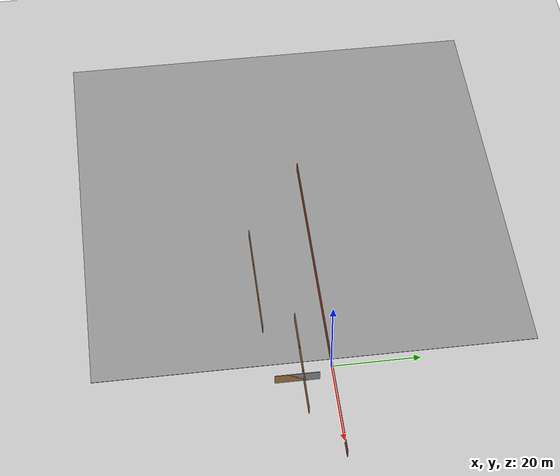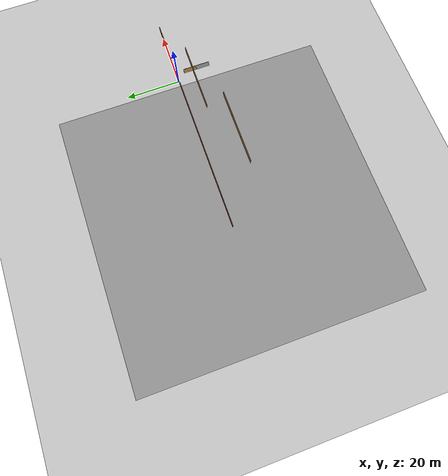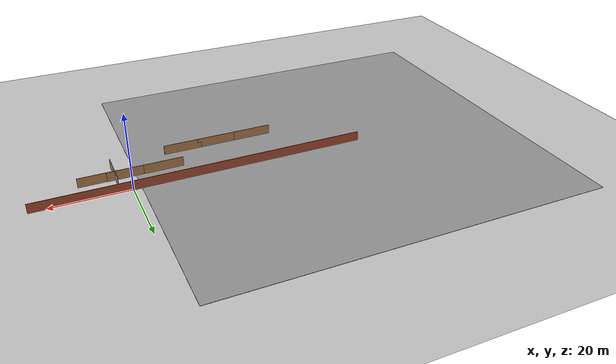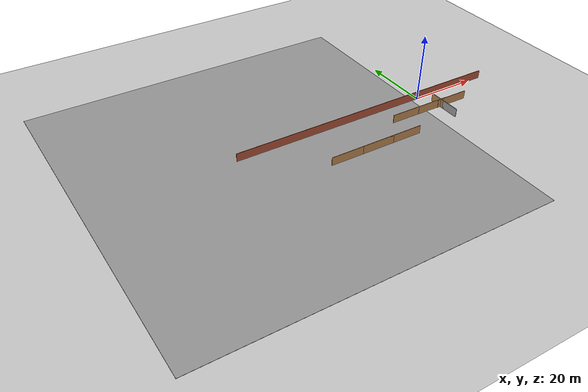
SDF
<sdf version="1.5">
 <world name="default">
  <model name="ground_plane">
   <static>1</static>
   <link name="link">
    <collision name="collision">
     <geometry><plane><normal>0 0 1</normal><size>100 100</size></plane></geometry>
     <surface><friction><ode><mu>100</mu><mu2>50</mu2></ode></friction></surface>
    </collision>
    <visual name="visual">
     <cast_shadows>0</cast_shadows>
     <geometry><plane><normal>0 0 1</normal><size>100 100</size></plane></geometry>
     <material>
      <script><uri>file://media/materials/scripts/gazebo.material</uri><name>Gazebo/Grey</name></script>
     </material>
    </visual>
   </link>
  </model>
  <model name="ground_plane_5">
   <static>1</static>
   <link name="link">
    <collision name="collision">
     <geometry><plane><normal>0 0 1</normal><size>100 100</size></plane></geometry>
     <surface><friction><ode><mu>100</mu><mu2>50</mu2></ode></friction></surface>
    </collision>
    <visual name="visual">
     <cast_shadows>0</cast_shadows>
     <geometry><plane><normal>0 0 1</normal><size>100 100</size></plane></geometry>
     <material>
      <script><uri>file://media/materials/scripts/gazebo.material</uri><name>Gazebo/Grey</name></script>
     </material>
    </visual>
   </link>
   <pose>-52 -3 0 0 -0 0</pose>
  </model>
  <model name="map_final_21">
   <pose>-18 0 0 0 -0 0</pose>
   <link name="Wall_7">
    <collision name="Wall_7_Collision">
     <geometry><box><size>84.15 0.15 2.5</size></box></geometry>
     <pose>0 0 1.25 0 -0 0</pose>
    </collision>
    <visual name="Wall_7_Visual">
     <pose>0 0 1.25 0 -0 0</pose>
     <geometry><box><size>84.15 0.15 2.5</size></box></geometry>
     <material>
      <script><uri>file://media/materials/scripts/gazebo.material</uri><name>Gazebo/Bricks</name></script>
      <ambient>1 1 1 1</ambient>
     </material>
    </visual>
    <pose>0 0 0 0 -0 3.14159</pose>
   </link>
   <static>1</static>
  </model>
  <model name="wall-10m-ofoghi_0">
   <pose>7 -6.59851 0 0 -0 0</pose>
   <link name="Wall_22">
    <collision name="Wall_22_Collision">
     <geometry><box><size>10 0.15 2.5</size></box></geometry>
     <pose>0 0 1.25 0 -0 0</pose>
    </collision>
    <visual name="Wall_22_Visual">
     <pose>0 0 1.25 0 -0 0</pose>
     <geometry><box><size>10 0.15 2.5</size></box></geometry>
     <material>
      <script><uri>file://media/materials/scripts/gazebo.material</uri><name>Gazebo/Wood</name></script>
      <ambient>1 1 1 1</ambient>
     </material>
    </visual>
   </link>
   <static>1</static>
  </model>
  <model name="wall-10m-ofoghi_1">
   <pose>0 -6.50132 0 0 -0 0</pose>
   <link name="Wall_22">
    <collision name="Wall_22_Collision">
     <geometry><box><size>10 0.15 2.5</size></box></geometry>
     <pose>0 0 1.25 0 -0 0</pose>
    </collision>
    <visual name="Wall_22_Visual">
     <pose>0 0 1.25 0 -0 0</pose>
     <geometry><box><size>10 0.15 2.5</size></box></geometry>
     <material>
      <script><uri>file://media/materials/scripts/gazebo.material</uri><name>Gazebo/Wood</name></script>
      <ambient>1 1 1 1</ambient>
     </material>
    </visual>
   </link>
   <static>1</static>
  </model>
  <model name="wall-10m-ofoghi_2">
   <pose>-9 -6.47267 0 0 -0 0</pose>
   <link name="Wall_22">
    <collision name="Wall_22_Collision">
     <geometry><box><size>10 0.15 2.5</size></box></geometry>
     <pose>0 0 1.25 0 -0 0</pose>
    </collision>
    <visual name="Wall_22_Visual">
     <pose>0 0 1.25 0 -0 0</pose>
     <geometry><box><size>10 0.15 2.5</size></box></geometry>
     <material>
      <script><uri>file://media/materials/scripts/gazebo.material</uri><name>Gazebo/Wood</name></script>
      <ambient>1 1 1 1</ambient>
     </material>
    </visual>
   </link>
   <static>1</static>
  </model>
  <model name="wall-10m-amodi">
   <pose>3 -8 0 0 -0 0</pose>
   <link name="Wall_24">
    <collision name="Wall_24_Collision">
     <geometry><box><size>10 0.15 2.5</size></box></geometry>
     <pose>0 0 1.25 0 -0 0</pose>
    </collision>
    <visual name="Wall_24_Visual">
     <pose>0 0 1.25 0 -0 0</pose>
     <geometry><box><size>10 0.15 2.5</size></box></geometry>
     <material>
      <script><uri>file://media/materials/scripts/gazebo.material</uri><name>Gazebo/Grey</name></script>
      <ambient>1 1 1 1</ambient>
     </material>
    </visual>
    <pose>0 -0 0 0 0 -1.5708</pose>
   </link>
   <link name="Wall_25">
    <collision name="Wall_25_Collision">
     <geometry><box><size>10 0.15 2.5</size></box></geometry>
     <pose>0 0 1.25 0 -0 0</pose>
    </collision>
    <visual name="Wall_25_Visual">
     <pose>0 0 1.25 0 -0 0</pose>
     <geometry><box><size>10 0.15 2.5</size></box></geometry>
     <material>
      <script><uri>file://media/materials/scripts/gazebo.material</uri><name>Gazebo/Wood</name></script>
      <ambient>1 1 1 1</ambient>
     </material>
    </visual>
    <pose>0 -0 0 0 -0 1.5708</pose>
   </link>
   <static>1</static>
  </model>
  <model name="wall-10m-ofoghi_3">
   <pose>-25 -14 0 0 -0 0</pose>
   <link name="Wall_22">
    <collision name="Wall_22_Collision">
     <geometry><box><size>10 0.15 2.5</size></box></geometry>
     <pose>0 0 1.25 0 -0 0</pose>
    </collision>
    <visual name="Wall_22_Visual">
     <pose>0 0 1.25 0 -0 0</pose>
     <geometry><box><size>10 0.15 2.5</size></box></geometry>
     <material>
      <script><uri>file://media/materials/scripts/gazebo.material</uri><name>Gazebo/Wood</name></script>
      <ambient>1 1 1 1</ambient>
     </material>
    </visual>
   </link>
   <static>1</static>
  </model>
  <model name="wall-10m-ofoghi_4">
   <pose>-16 -14 0 0 -0 0</pose>
   <link name="Wall_22">
    <collision name="Wall_22_Collision">
     <geometry><box><size>10 0.15 2.5</size></box></geometry>
     <pose>0 0 1.25 0 -0 0</pose>
    </collision>
    <visual name="Wall_22_Visual">
     <pose>0 0 1.25 0 -0 0</pose>
     <geometry><box><size>10 0.15 2.5</size></box></geometry>
     <material>
      <script><uri>file://media/materials/scripts/gazebo.material</uri><name>Gazebo/Wood</name></script>
      <ambient>1 1 1 1</ambient>
     </material>
    </visual>
   </link>
   <static>1</static>
  </model>
  <model name="wall-10m-ofoghi_5">
   <pose>-35 -14 0 0 -0 0</pose>
   <link name="Wall_22">
    <collision name="Wall_22_Collision">
     <geometry><box><size>10 0.15 2.5</size></box></geometry>
     <pose>0 0 1.25 0 -0 0</pose>
    </collision>
    <visual name="Wall_22_Visual">
     <pose>0 0 1.25 0 -0 0</pose>
     <geometry><box><size>10 0.15 2.5</size></box></geometry>
     <material>
      <script><uri>file://media/materials/scripts/gazebo.material</uri><name>Gazebo/Wood</name></script>
      <ambient>1 1 1 1</ambient>
     </material>
    </visual>
   </link>
   <static>1</static>
  </model>
 </world>
</sdf>
